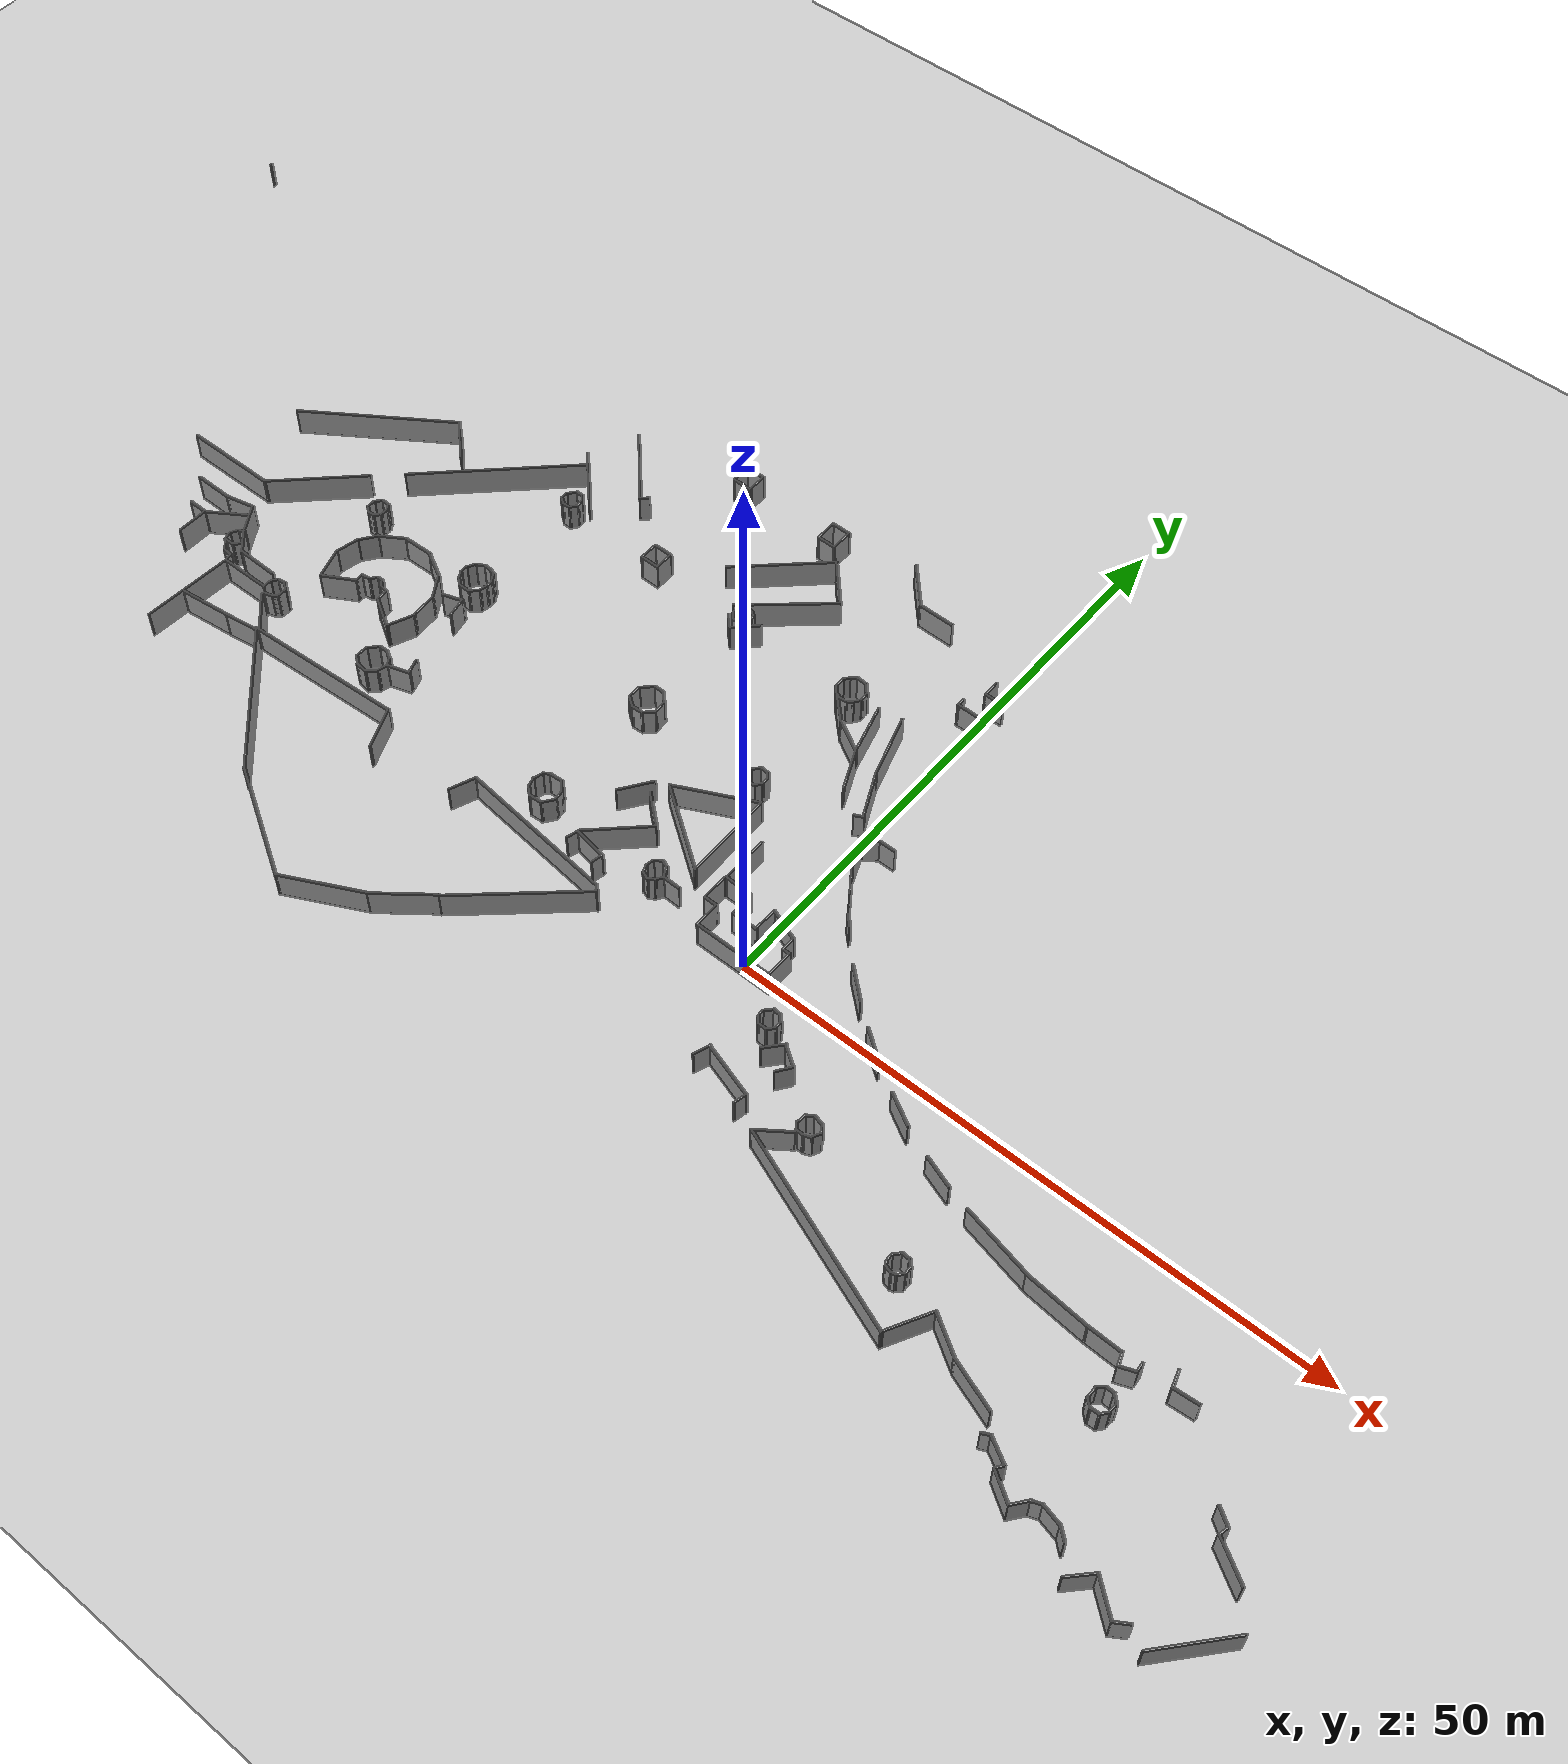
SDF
<?xml version="1.0" ?>
<sdf version="1.5">
  <world name="default">
    <include>
      <uri>model://ground_plane</uri>
    </include>
    <include>
      <uri>model://sun</uri>
    </include>
    <include>
      <uri>model://Ped_mall</uri>
    </include>
  </world>
</sdf>
